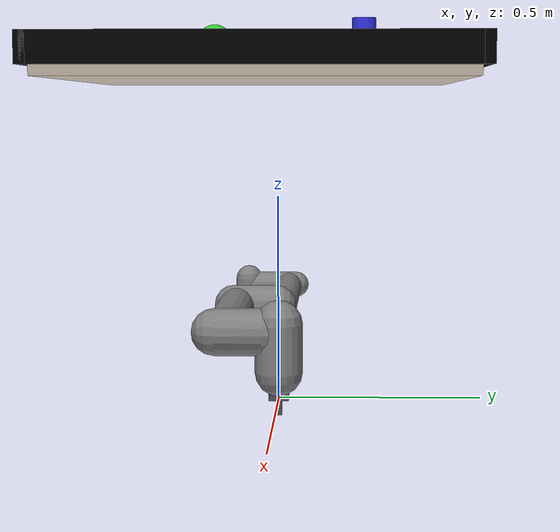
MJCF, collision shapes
<!-- UR5e pick-and-place scene with parallel jaw gripper -->
<mujoco model="ur5_pickplace_scene">
  <include file="ur5e/ur5e.xml"/>

  <default>
    <default class="table">
      <geom rgba="0.76 0.7 0.65 1" contype="1" conaffinity="1"/>
    </default>
  </default>

  <worldbody>
    <!-- Table surface -->
    <geom name="table" type="box" pos="0.4 0 0.79" size="0.4 0.4 0.02"
          class="table"/>

    <!-- Invisible walls -->
    <geom name="wall_xp" type="box" pos="0.81 0 0.82" size="0.01 0.41 0.03"
          rgba="0 0 0 0" contype="1" conaffinity="1"/>
    <geom name="wall_xn" type="box" pos="-0.01 0 0.82" size="0.01 0.41 0.03"
          rgba="0 0 0 0" contype="1" conaffinity="1"/>
    <geom name="wall_yp" type="box" pos="0.4 0.41 0.82" size="0.42 0.01 0.03"
          rgba="0 0 0 0" contype="1" conaffinity="1"/>
    <geom name="wall_yn" type="box" pos="0.4 -0.41 0.82" size="0.42 0.01 0.03"
          rgba="0 0 0 0" contype="1" conaffinity="1"/>

    <!-- Gripper body (welded to wrist_3_link) -->
    <body name="gripper_base" pos="0 0 0">
      <freejoint/>
      <site name="gripper_weld_site" pos="0 0 0" size="0.002" rgba="1 0 0 0.5"/>
      <!-- Wrist camera (facing -Z in gripper frame = approach direction) -->
      <camera name="wrist_cam" pos="0.03 0.02 -0.04" xyaxes="0 -1 0 0 0 -1" fovy="70"/>

      <!-- Palm -->
      <geom name="palm_geom" type="box" size="0.015 0.025 0.008"
            rgba="0.3 0.3 0.35 1" contype="0" conaffinity="0"/>

      <!-- Left finger (+X direction) -->
      <body name="finger_left" pos="0.005 0 -0.025">
        <joint name="finger_left_joint" type="slide" axis="1 0 0"
               range="0 0.045" damping="5"/>
        <geom name="finger_left_geom" type="box" size="0.004 0.008 0.02"
              rgba="0.3 0.3 0.35 1" friction="5.0 0.01 0.005"
              contype="1" conaffinity="1"/>
      </body>

      <!-- Right finger (-X direction) -->
      <body name="finger_right" pos="-0.005 0 -0.025">
        <joint name="finger_right_joint" type="slide" axis="-1 0 0"
               range="0 0.045" damping="5"/>
        <geom name="finger_right_geom" type="box" size="0.004 0.008 0.02"
              rgba="0.3 0.3 0.35 1" friction="5.0 0.01 0.005"
              contype="1" conaffinity="1"/>
      </body>
    </body>

    <!-- Objects (sized for gripper with fingers at ±0.01) -->
    <body name="obj_cube" pos="0.3 0.1 0.842">
      <freejoint/>
      <geom name="cube_geom" type="box" size="0.03 0.03 0.03"
            rgba="0.9 0.2 0.2 1" mass="0.002" friction="5.0 0.01 0.005"/>
    </body>

    <body name="obj_sphere" pos="0.5 -0.1 0.845">
      <freejoint/>
      <geom name="sphere_geom" type="sphere" size="0.035"
            rgba="0.2 0.8 0.2 1" mass="0.05" friction="5.0 0.01 0.005"/>
    </body>

    <body name="obj_cylinder" pos="0.4 0.2 0.85">
      <freejoint/>
      <geom name="cylinder_geom" type="cylinder" size="0.025 0.05"
            rgba="0.2 0.2 0.9 1" mass="0.05" friction="5.0 0.01 0.005"/>
    </body>

    <!-- Target marker -->
    <site name="target_marker" pos="0.5 0 0.82" size="0.015"
          rgba="1 1 0 0.5" type="sphere"/>

    <!-- Cameras -->
    <body name="table_center" pos="0.4 0 0.8">
      <geom size="0.001" rgba="0 0 0 0" contype="0" conaffinity="0"/>
    </body>
    <camera name="top_cam" pos="0.4 0 1.5" target="table_center" fovy="60"/>
  </worldbody>

  <equality>
    <weld site1="attachment_site" site2="gripper_weld_site" solref="0.0001 1" solimp="0.99 0.999 0.001"/>
  </equality>

  <actuator>
    <!-- Gripper actuators (two separate, command symmetrically from Python) -->
    <position name="gripper_left" joint="finger_left_joint"
              kp="50" ctrlrange="0 0.045"/>
    <position name="gripper_right" joint="finger_right_joint"
              kp="50" ctrlrange="0 0.045"/>
  </actuator>

</mujoco>

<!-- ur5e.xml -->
<mujoco model="ur5e">
  <compiler angle="radian" meshdir="assets" autolimits="true"/>

  <option integrator="implicitfast"/>

  <default>
    <default class="ur5e">
      <material specular="0.5" shininess="0.25"/>
      <joint axis="0 1 0" range="-6.28319 6.28319" armature="0.1"/>
      <general gaintype="fixed" biastype="affine" ctrlrange="-6.2831 6.2831" gainprm="2000" biasprm="0 -2000 -400"
        forcerange="-150 150"/>
      <default class="size3">
        <default class="size3_limited">
          <joint range="-3.1415 3.1415"/>
          <general ctrlrange="-3.1415 3.1415"/>
        </default>
      </default>
      <default class="size1">
        <general gainprm="500" biasprm="0 -500 -100" forcerange="-28 28"/>
      </default>
      <default class="visual">
        <geom type="mesh" contype="0" conaffinity="0" group="2"/>
      </default>
      <default class="collision">
        <geom type="capsule" group="3"/>
        <default class="eef_collision">
          <geom type="cylinder"/>
        </default>
      </default>
      <site size="0.001" rgba="0.5 0.5 0.5 0.3" group="4"/>
    </default>
  </default>

  <asset>
    <material class="ur5e" name="black" rgba="0.033 0.033 0.033 1"/>
    <material class="ur5e" name="jointgray" rgba="0.278 0.278 0.278 1"/>
    <material class="ur5e" name="linkgray" rgba="0.82 0.82 0.82 1"/>
    <material class="ur5e" name="urblue" rgba="0.49 0.678 0.8 1"/>

    <mesh file="base_0.obj"/>
    <mesh file="base_1.obj"/>
    <mesh file="shoulder_0.obj"/>
    <mesh file="shoulder_1.obj"/>
    <mesh file="shoulder_2.obj"/>
    <mesh file="upperarm_0.obj"/>
    <mesh file="upperarm_1.obj"/>
    <mesh file="upperarm_2.obj"/>
    <mesh file="upperarm_3.obj"/>
    <mesh file="forearm_0.obj"/>
    <mesh file="forearm_1.obj"/>
    <mesh file="forearm_2.obj"/>
    <mesh file="forearm_3.obj"/>
    <mesh file="wrist1_0.obj"/>
    <mesh file="wrist1_1.obj"/>
    <mesh file="wrist1_2.obj"/>
    <mesh file="wrist2_0.obj"/>
    <mesh file="wrist2_1.obj"/>
    <mesh file="wrist2_2.obj"/>
    <mesh file="wrist3.obj"/>
  </asset>

  <worldbody>
    <light name="spotlight" mode="targetbodycom" target="wrist_2_link" pos="0 -1 2"/>
    <body name="base" quat="0 0 0 -1" childclass="ur5e">
      <inertial mass="4.0" pos="0 0 0" diaginertia="0.00443333156 0.00443333156 0.0072"/>
      <geom mesh="base_0" material="black" class="visual"/>
      <geom mesh="base_1" material="jointgray" class="visual"/>
      <body name="shoulder_link" pos="0 0 0.163">
        <inertial mass="3.7" pos="0 0 0" diaginertia="0.0102675 0.0102675 0.00666"/>
        <joint name="shoulder_pan_joint" class="size3" axis="0 0 1"/>
        <geom mesh="shoulder_0" material="urblue" class="visual"/>
        <geom mesh="shoulder_1" material="black" class="visual"/>
        <geom mesh="shoulder_2" material="jointgray" class="visual"/>
        <geom class="collision" size="0.06 0.06" pos="0 0 -0.04"/>
        <body name="upper_arm_link" pos="0 0.138 0" quat="1 0 1 0">
          <inertial mass="8.393" pos="0 0 0.2125" diaginertia="0.133886 0.133886 0.0151074"/>
          <joint name="shoulder_lift_joint" class="size3"/>
          <geom mesh="upperarm_0" material="linkgray" class="visual"/>
          <geom mesh="upperarm_1" material="black" class="visual"/>
          <geom mesh="upperarm_2" material="jointgray" class="visual"/>
          <geom mesh="upperarm_3" material="urblue" class="visual"/>
          <geom class="collision" pos="0 -0.04 0" quat="1 1 0 0" size="0.06 0.06"/>
          <geom class="collision" size="0.05 0.2" pos="0 0 0.2"/>
          <body name="forearm_link" pos="0 -0.131 0.425">
            <inertial mass="2.275" pos="0 0 0.196" diaginertia="0.0311796 0.0311796 0.004095"/>
            <joint name="elbow_joint" class="size3_limited"/>
            <geom mesh="forearm_0" material="urblue" class="visual"/>
            <geom mesh="forearm_1" material="linkgray" class="visual"/>
            <geom mesh="forearm_2" material="black" class="visual"/>
            <geom mesh="forearm_3" material="jointgray" class="visual"/>
            <geom class="collision" pos="0 0.08 0" quat="1 1 0 0" size="0.055 0.06"/>
            <geom class="collision" size="0.038 0.19" pos="0 0 0.2"/>
            <body name="wrist_1_link" pos="0 0 0.392" quat="1 0 1 0">
              <inertial mass="1.219" pos="0 0.127 0" diaginertia="0.0025599 0.0025599 0.0021942"/>
              <joint name="wrist_1_joint" class="size1"/>
              <geom mesh="wrist1_0" material="black" class="visual"/>
              <geom mesh="wrist1_1" material="urblue" class="visual"/>
              <geom mesh="wrist1_2" material="jointgray" class="visual"/>
              <geom class="collision" pos="0 0.05 0" quat="1 1 0 0" size="0.04 0.07"/>
              <body name="wrist_2_link" pos="0 0.127 0">
                <inertial mass="1.219" pos="0 0 0.1" diaginertia="0.0025599 0.0025599 0.0021942"/>
                <joint name="wrist_2_joint" axis="0 0 1" class="size1"/>
                <geom mesh="wrist2_0" material="black" class="visual"/>
                <geom mesh="wrist2_1" material="urblue" class="visual"/>
                <geom mesh="wrist2_2" material="jointgray" class="visual"/>
                <geom class="collision" size="0.04 0.06" pos="0 0 0.04"/>
                <geom class="collision" pos="0 0.02 0.1" quat="1 1 0 0" size="0.04 0.04"/>
                <body name="wrist_3_link" pos="0 0 0.1">
                  <inertial mass="0.1889" pos="0 0.0771683 0" quat="1 0 0 1"
                    diaginertia="0.000132134 9.90863e-05 9.90863e-05"/>
                  <joint name="wrist_3_joint" class="size1"/>
                  <geom material="linkgray" mesh="wrist3" class="visual"/>
                  <geom class="eef_collision" pos="0 0.08 0" quat="1 1 0 0" size="0.04 0.02"/>
                  <site name="attachment_site" pos="0 0 0" quat="1 0 0 0"/>
                </body>
              </body>
            </body>
          </body>
        </body>
      </body>
    </body>
  </worldbody>

  <actuator>
    <general class="size3" name="shoulder_pan" joint="shoulder_pan_joint"/>
    <general class="size3" name="shoulder_lift" joint="shoulder_lift_joint"/>
    <general class="size3_limited" name="elbow" joint="elbow_joint"/>
    <general class="size1" name="wrist_1" joint="wrist_1_joint"/>
    <general class="size1" name="wrist_2" joint="wrist_2_joint"/>
    <general class="size1" name="wrist_3" joint="wrist_3_joint"/>
  </actuator>

  <keyframe>
    <key name="home" qpos="-1.5708 -1.5708 1.5708 -1.5708 -1.5708 0" ctrl="-1.5708 -1.5708 1.5708 -1.5708 -1.5708 0"/>
  </keyframe>
</mujoco>
